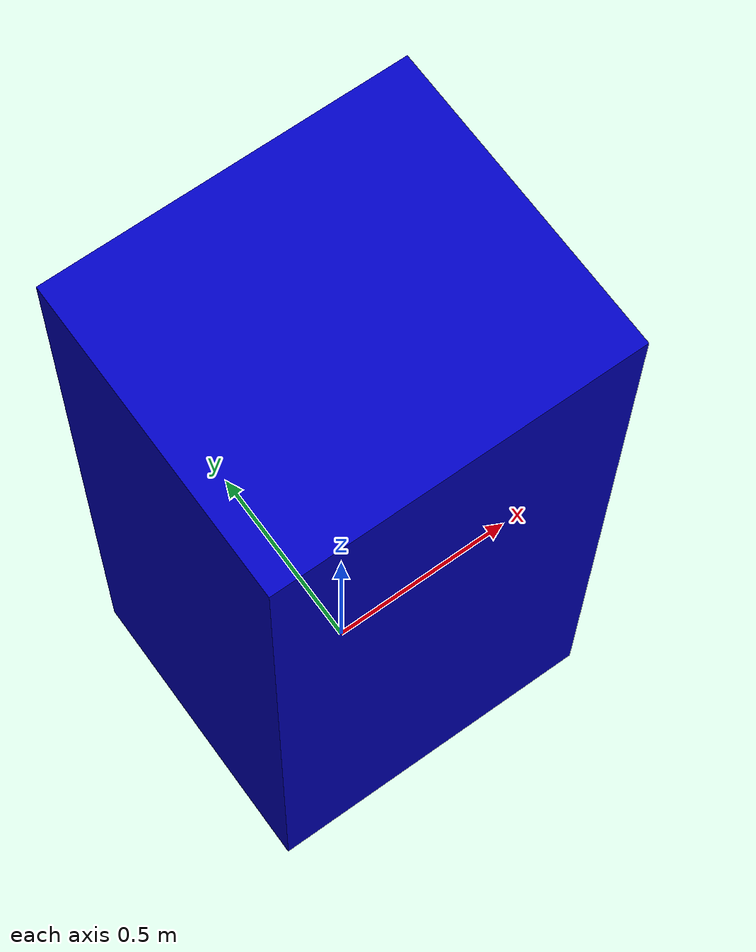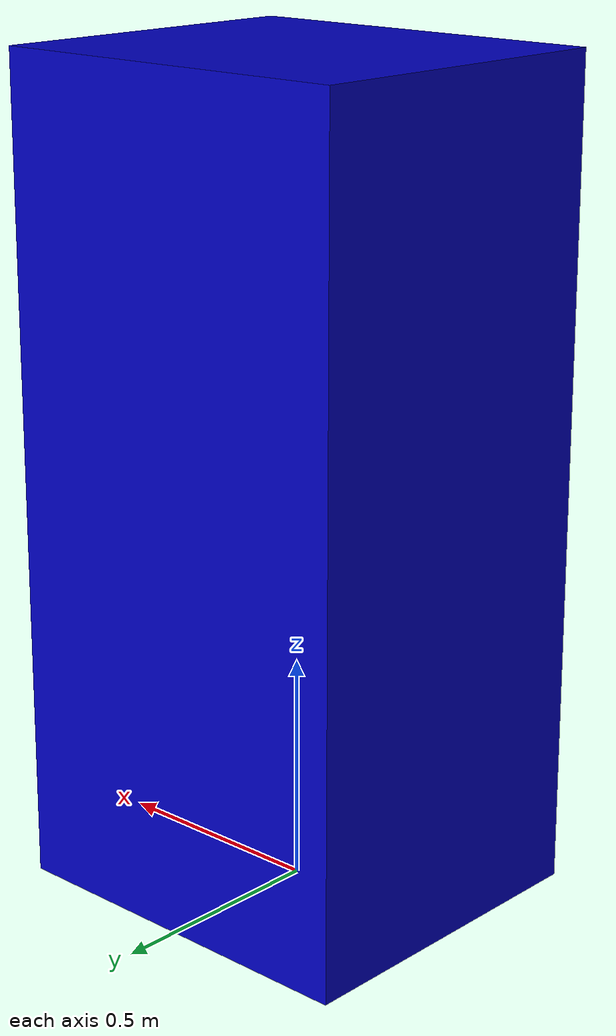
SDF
<?xml version="1.0" ?>
<sdf version="1.6">
  <model name="mobi_dick">
    <link name="1">
      <collision name="1">
        <geometry>
          <box>
            <size>0.85 0.75 1.8</size>
          </box>
        </geometry>
      </collision>
      <visual name="1">
        <geometry>
          <box>
            <size>0.85 0.75 1.8</size>
          </box>
        </geometry>
        <material>
          <ambient>0 0 0.75 1</ambient>
        </material>
      </visual>
      <pose>0.0 0.0 0.9 0 0 0</pose>
    </link>
    <link name="on_top_of">
      <virtual_volume name="on_top_of">
        <geometry>
          <box>
            <size>0.83 0.69 0.25</size>
          </box>
        </geometry>
        <pose>0.0 0.0 1.945 0 0 0</pose>
      </virtual_volume>
    </link>
    <link name="in_front_of">
      <virtual_volume name="in_front_of">
        <geometry>
          <box>
            <size>0.2 0.55 0.01</size>
          </box>
        </geometry>
        <pose>0.925 0.0 0.005 0 0 0</pose>
      </virtual_volume>
    </link>
    <static>true</static>
  </model>
</sdf>
